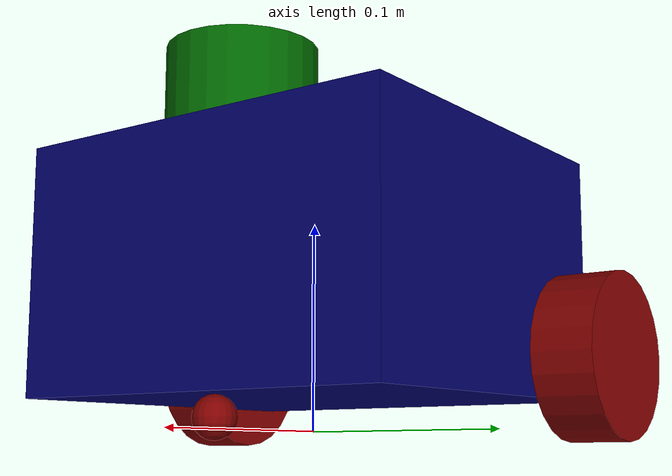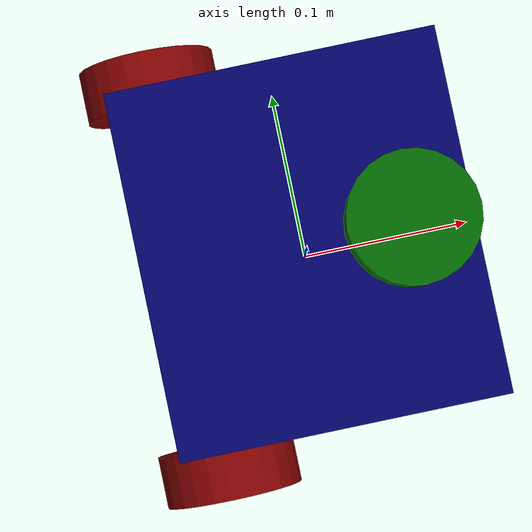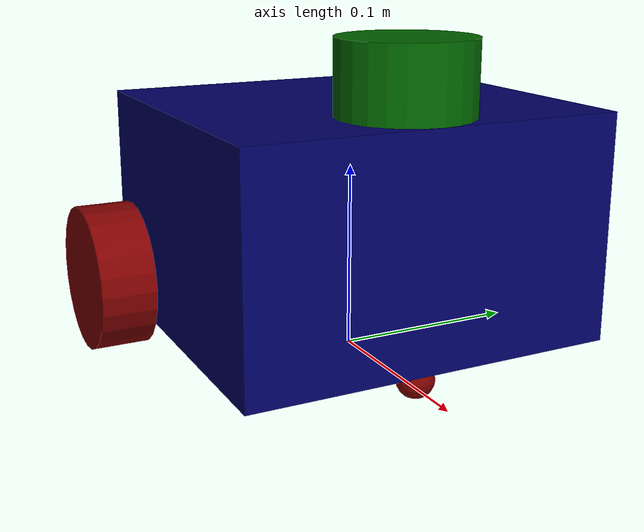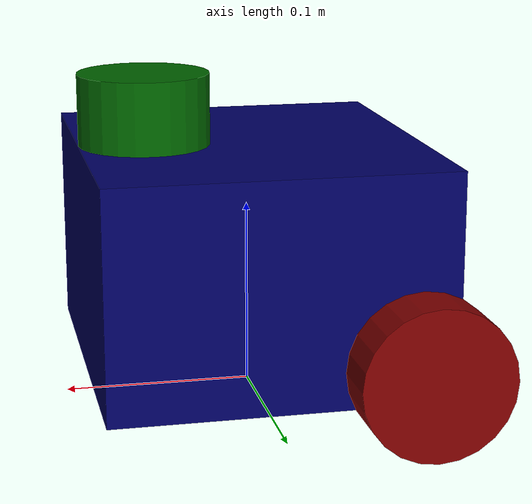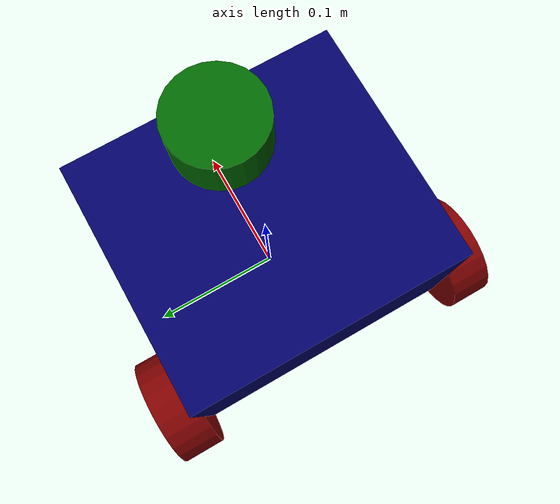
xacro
<?xml version="1.0"?>
<robot name="robot">

  <!--BASE LINK-->
  <link name="base_link" />

  <!--===== Defining all colours here =====-->
  <material name="Yellow">
    <color rgba="0.5 0.5 0.0 1" />
  </material>
  <material name="Red">
    <color rgba="0.5 0.0 0.0 1" />
  </material>
  <material name="Blue">
    <color rgba="0.0 0.0 0.4 1" />
  </material>
  <material name="Green">
    <color rgba="0.0 0.4 0.0 1" />
  </material>

  <!--========================================== CHASSIS LINK ==========================================-->
  <link name="chassis_link">
    <inertial>
      <origin xyz="0 0 0" rpy="0 0 0" />
      <mass value="70.0" />
      <inertia ixx="0.079945" ixy="0.00012078" ixz="0.00015606" iyy="0.068406" iyz="-0.0049053" izz="0.12343" />
    </inertial>
  <visual>
    <origin xyz="0 0 0" rpy="0 0 0" />
    <geometry>
      <box size="0.18 0.20 0.12"/>
    </geometry>
    <material name="Blue" />
  </visual>
  <collision>
    <origin xyz="0 0 0" rpy="0 0 0" />
    <geometry>
      <box size="0.18 0.20 0.12"/>
    </geometry>
  </collision>
  </link>

  <!--========================================== CHASSIS JOINT ==========================================-->
  <joint name="chassis_joint" type="fixed">
    <origin xyz="0 0 0.075" rpy="0 0 0" />
    <parent link="base_link" />
    <child link="chassis_link" />
    <axis xyz="0 0 0" />
  </joint>

  <!--========================================== RIGHT WHEEL LINK ==========================================-->
  <link name="right_wheel_link">
    <inertial>
      <origin xyz="0.0 0.0 0.0" rpy="0 0 0" />
      <mass value="0.50917" />
      <inertia ixx="0.0012185" ixy="1.8059E-20" ixz="3.0427E-20" iyy="0.0012185" iyz="-4.0491E-20" izz="0.0022928" />
    </inertial>
    <visual>
      <origin xyz="0 0 0" rpy="0 0 0" />
      <geometry>
        <cylinder length="0.03" radius="0.04" />
      </geometry>
      <material name="Red" />
    </visual>
    <collision>
      <origin xyz="0 0 0" rpy="0 0 0" />
      <geometry>
        <cylinder length="0.03" radius="0.04" />
      </geometry>
    </collision>
  </link>

  <!--========================================== RIGHT WHEEL JOINT ==========================================-->
  <joint name="right_wheel_joint" type="continuous">
    <origin xyz="-0.07 -0.115 -0.04" rpy="1.5708 0 0" />
    <parent link="chassis_link" />
    <child link="right_wheel_link" />
    <axis xyz="0 0 -1" />
  </joint>

  <transmission name="right_wheel_trans" type="SimpleTransmission">
    <type>transmission_interface/SimpleTransmission</type>
    <actuator name="right_wheel_motor">
      <mechanicalReduction>1</mechanicalReduction>
    </actuator>
    <joint name="right_wheel_joint">
      <hardwareInterface>VelocityJointInterface</hardwareInterface>
    </joint>
  </transmission>

  <!--========================================== LEFT WHEEL LINK ==========================================-->
  <link name="left_wheel_link">
    <inertial>
      <origin xyz="0.0 0.0 0.0" rpy="0 0 0" />
      <mass value="0.50917" />
      <inertia ixx="0.0012185" ixy="1.8059E-20" ixz="3.0427E-20" iyy="0.0012185" iyz="-4.0491E-20" izz="0.0022928" />
    </inertial>
    <visual>
      <origin xyz="0 0 0" rpy="0 0 0" />
      <geometry>
        <cylinder length="0.03" radius="0.04" />
      </geometry>
      <material name="Red" />
    </visual>
    <collision>
      <origin xyz="0 0 0" rpy="0 0 0" />
      <geometry>
        <cylinder length="0.03" radius="0.04" />
      </geometry>
    </collision>
  </link>

  <!--========================================== LEFT WHEEL JOINT ==========================================-->
  <joint name="left_wheel_joint" type="continuous">
    <origin xyz="-0.07 0.115 -0.04" rpy="-1.5708 0 0" />
    <parent link="chassis_link" />
    <child link="left_wheel_link" />
    <axis xyz="0 0 1" />
  </joint>

  <transmission name="left_wheel_trans" type="SimpleTransmission">
    <type>transmission_interface/SimpleTransmission</type>
    <actuator name="left_wheel_motor">
      <mechanicalReduction>1</mechanicalReduction>
    </actuator>
    <joint name="left_wheel_joint">
      <hardwareInterface>VelocityJointInterface</hardwareInterface>
    </joint>
  </transmission>

  <!--=============================================== CASTOR WHEEL LINK ===============================================-->
  <link name="castor_wheel_link">
    <inertial>
      <origin xyz="0.0 0.0 0.0" rpy="0 0 0" />
      <mass value="0.50917" />
      <inertia ixx="0.0012185" ixy="1.8059E-20" ixz="3.0427E-20" iyy="0.0012185" iyz="-4.0491E-20" izz="0.0022928" />
    </inertial>
    <visual>
      <origin xyz="0 0 0" rpy="0 0 0" />
      <geometry>
        <sphere radius="0.01" />
      </geometry>
      <material name="Red" />
    </visual>
    <collision>
      <origin xyz="0 0 0" rpy="0 0 0" />
      <geometry>
        <sphere radius="0.01" />
      </geometry>
    </collision>
  </link>

  <!--============================================ CASTOR WHEEL JOINT ============================================-->
  <joint name="castor_wheel_joint" type="continuous">
    <origin xyz="0.07 0.0 -0.07" rpy="0 0 0" />
    <parent link="chassis_link" />
    <child link="castor_wheel_link" />
    <axis xyz="0 1 1" />
  </joint>

  <!--========================================== LASER LINK ==========================================-->
  <link name="laser_link">
    <inertial>
      <origin xyz="0 0 0" rpy="0 0 0" />
      <mass value="0.0093378" />
      <inertia ixx="0" ixy="0" ixz="0" iyy="0" iyz="0" izz="0" />
    </inertial>
    <visual>
      <origin xyz="0 0 0" rpy="0 0 0" />
      <geometry>
        <cylinder length="0.046" radius="0.035" />
      </geometry>
      <material name="Green" />
    </visual>
    <collision>
      <origin xyz="0 0 0" rpy="0 0 0" />
      <geometry>
        <cylinder length="0.046" radius="0.035" />
      </geometry>
    </collision>
  </link>

  <!--========================================== LASER JOINT ==========================================-->
  <joint name="laser_joint" type="fixed">
    <!--origin xyz="0.055 0 0.075" rpy="0 0 -1.5708" /-->
    <origin xyz="0.055 0 0.075" rpy="0 0 3.14" />
    <parent link="chassis_link" />
    <child link="laser_link" />
    <axis xyz="0 0 0" />
  </joint>

  <!--========================================== GAZEBO TAGS ==========================================-->
  <!-- BASE LINK -->
  <gazebo reference="chassis_link">
    <material>Gazebo/Blue</material>
  </gazebo>

  <gazebo reference="right_wheel_link">
    <material>Gazebo/Red</material>
  </gazebo>

  <gazebo reference="left_wheel_link">
    <material>Gazebo/Red</material>
  </gazebo>

  <gazebo reference="castor_wheel_link">
    <material>Gazebo/Red</material>
  </gazebo>

  <gazebo reference="laser_link">
    <material>Gazebo/Green</material>
  </gazebo>

</robot>
